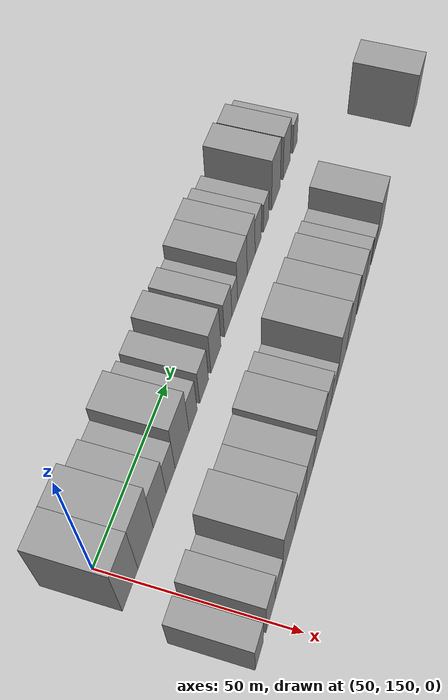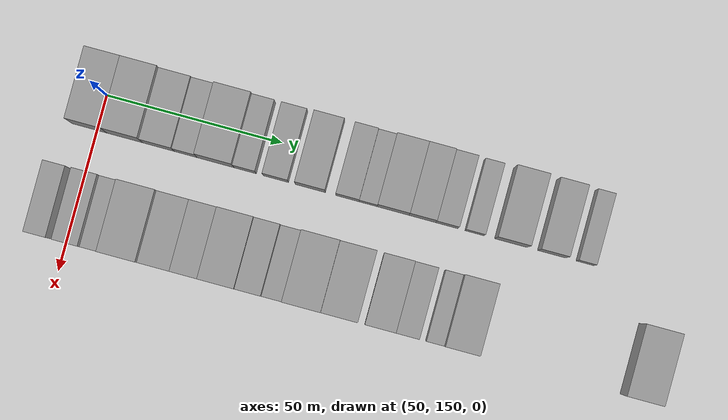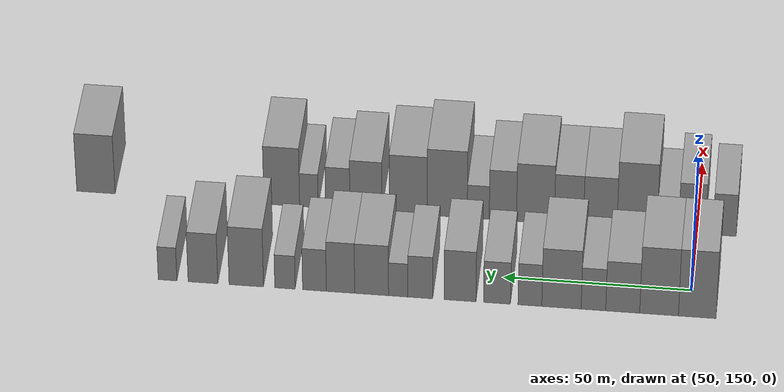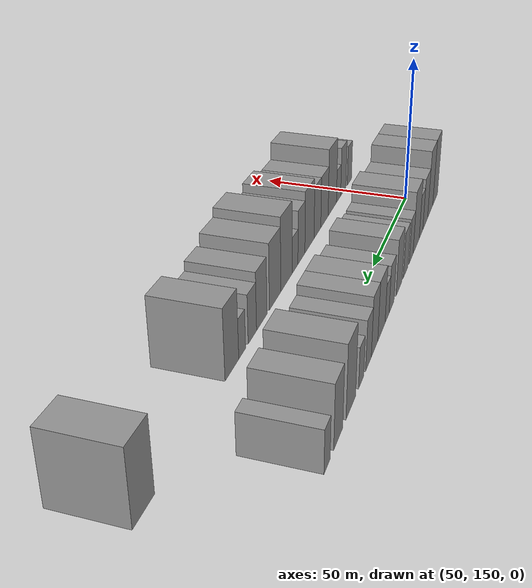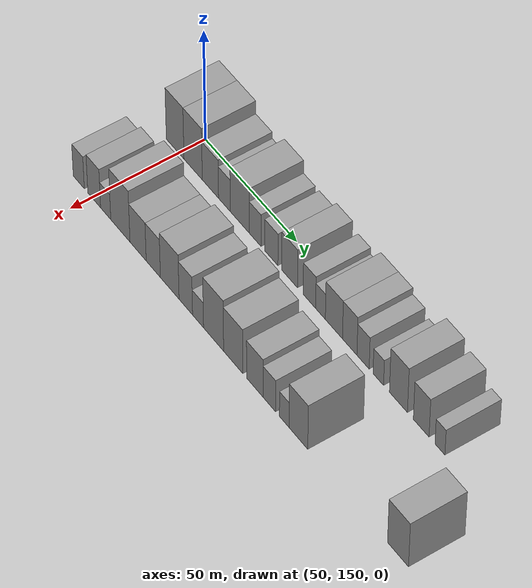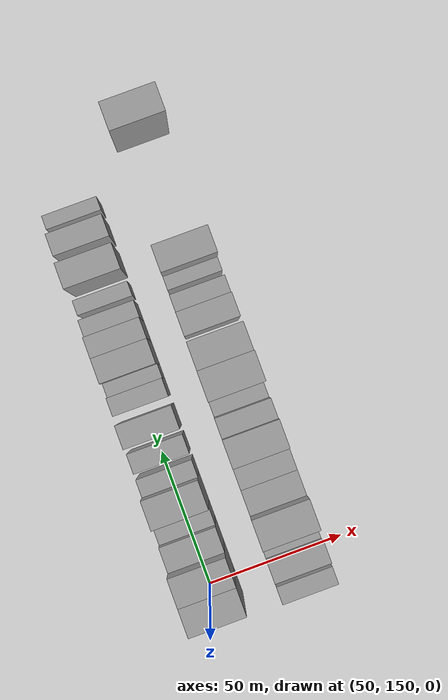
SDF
<sdf version="1.6">
 <world name="default">
  <model name="building_50">
   <static>1</static>
   <pose>50.0000 147.9668 0 0.000000 0.000000 0.000000</pose>
   <link name="link">
    <pose>0 0 12.00 0 0 0</pose>
    <collision name="collision"><geometry><box><size>20.0000 9.9063 24.0000</size></box></geometry></collision>
    <visual name="visual">
     <cast_shadows>0</cast_shadows>
     <geometry><box><size>20.0000 9.9063 24.0000</size></box></geometry>
     <material>
      <script>
       <uri>model://grey_wall/materials/scripts</uri>
       <uri>model://grey_wall/materials/textures</uri>
       <name>vrc/grey_wall</name>
      </script>
     </material>
    </visual>
   </link>
  </model>
  <model name="building_51">
   <static>1</static>
   <pose>50.0000 158.0264 0 0.000000 0.000000 0.000000</pose>
   <link name="link">
    <pose>0 0 12.00 0 0 0</pose>
    <collision name="collision"><geometry><box><size>20.0000 10.2129 24.0000</size></box></geometry></collision>
    <visual name="visual">
     <cast_shadows>0</cast_shadows>
     <geometry><box><size>20.0000 10.2129 24.0000</size></box></geometry>
     <material>
      <script>
       <uri>model://grey_wall/materials/scripts</uri>
       <uri>model://grey_wall/materials/textures</uri>
       <name>vrc/grey_wall</name>
      </script>
     </material>
    </visual>
   </link>
  </model>
  <model name="building_52">
   <static>1</static>
   <pose>50.0000 167.6139 0 0.000000 0.000000 0.000000</pose>
   <link name="link">
    <pose>0 0 9.00 0 0 0</pose>
    <collision name="collision"><geometry><box><size>20.0000 8.9620 18.0000</size></box></geometry></collision>
    <visual name="visual">
     <cast_shadows>0</cast_shadows>
     <geometry><box><size>20.0000 8.9620 18.0000</size></box></geometry>
     <material>
      <script>
       <uri>model://grey_wall/materials/scripts</uri>
       <uri>model://grey_wall/materials/textures</uri>
       <name>vrc/grey_wall</name>
      </script>
     </material>
    </visual>
   </link>
  </model>
  <model name="building_53">
   <static>1</static>
   <pose>50.0000 175.3463 0 0.000000 0.000000 0.000000</pose>
   <link name="link">
    <pose>0 0 7.50 0 0 0</pose>
    <collision name="collision"><geometry><box><size>20.0000 6.5030 15.0000</size></box></geometry></collision>
    <visual name="visual">
     <cast_shadows>0</cast_shadows>
     <geometry><box><size>20.0000 6.5030 15.0000</size></box></geometry>
     <material>
      <script>
       <uri>model://grey_wall/materials/scripts</uri>
       <uri>model://grey_wall/materials/textures</uri>
       <name>vrc/grey_wall</name>
      </script>
     </material>
    </visual>
   </link>
  </model>
  <model name="building_54">
   <static>1</static>
   <pose>50.0000 183.7897 0 0.000000 0.000000 0.000000</pose>
   <link name="link">
    <pose>0 0 10.50 0 0 0</pose>
    <collision name="collision"><geometry><box><size>20.0000 10.3837 21.0000</size></box></geometry></collision>
    <visual name="visual">
     <cast_shadows>0</cast_shadows>
     <geometry><box><size>20.0000 10.3837 21.0000</size></box></geometry>
     <material>
      <script>
       <uri>model://grey_wall/materials/scripts</uri>
       <uri>model://grey_wall/materials/textures</uri>
       <name>vrc/grey_wall</name>
      </script>
     </material>
    </visual>
   </link>
  </model>
  <model name="building_55">
   <static>1</static>
   <pose>50.0000 192.1452 0 0.000000 0.000000 0.000000</pose>
   <link name="link">
    <pose>0 0 7.50 0 0 0</pose>
    <collision name="collision"><geometry><box><size>20.0000 6.3272 15.0000</size></box></geometry></collision>
    <visual name="visual">
     <cast_shadows>0</cast_shadows>
     <geometry><box><size>20.0000 6.3272 15.0000</size></box></geometry>
     <material>
      <script>
       <uri>model://grey_wall/materials/scripts</uri>
       <uri>model://grey_wall/materials/textures</uri>
       <name>vrc/grey_wall</name>
      </script>
     </material>
    </visual>
   </link>
  </model>
  <model name="building_56">
   <static>1</static>
   <pose>50.0000 200.8737 0 0.000000 0.000000 0.000000</pose>
   <link name="link">
    <pose>0 0 7.50 0 0 0</pose>
    <collision name="collision"><geometry><box><size>20.0000 7.1298 15.0000</size></box></geometry></collision>
    <visual name="visual">
     <cast_shadows>0</cast_shadows>
     <geometry><box><size>20.0000 7.1298 15.0000</size></box></geometry>
     <material>
      <script>
       <uri>model://grey_wall/materials/scripts</uri>
       <uri>model://grey_wall/materials/textures</uri>
       <name>vrc/grey_wall</name>
      </script>
     </material>
    </visual>
   </link>
  </model>
  <model name="building_57">
   <static>1</static>
   <pose>50.0000 210.6754 0 0.000000 0.000000 0.000000</pose>
   <link name="link">
    <pose>0 0 9.00 0 0 0</pose>
    <collision name="collision"><geometry><box><size>20.0000 8.4736 18.0000</size></box></geometry></collision>
    <visual name="visual">
     <cast_shadows>0</cast_shadows>
     <geometry><box><size>20.0000 8.4736 18.0000</size></box></geometry>
     <material>
      <script>
       <uri>model://grey_wall/materials/scripts</uri>
       <uri>model://grey_wall/materials/textures</uri>
       <name>vrc/grey_wall</name>
      </script>
     </material>
    </visual>
   </link>
  </model>
  <model name="building_58">
   <static>1</static>
   <pose>50.0000 221.2127 0 0.000000 0.000000 0.000000</pose>
   <link name="link">
    <pose>0 0 7.50 0 0 0</pose>
    <collision name="collision"><geometry><box><size>20.0000 6.6009 15.0000</size></box></geometry></collision>
    <visual name="visual">
     <cast_shadows>0</cast_shadows>
     <geometry><box><size>20.0000 6.6009 15.0000</size></box></geometry>
     <material>
      <script>
       <uri>model://grey_wall/materials/scripts</uri>
       <uri>model://grey_wall/materials/textures</uri>
       <name>vrc/grey_wall</name>
      </script>
     </material>
    </visual>
   </link>
  </model>
  <model name="building_59">
   <static>1</static>
   <pose>50.0000 227.0809 0 0.000000 0.000000 0.000000</pose>
   <link name="link">
    <pose>0 0 6.00 0 0 0</pose>
    <collision name="collision"><geometry><box><size>20.0000 5.1356 12.0000</size></box></geometry></collision>
    <visual name="visual">
     <cast_shadows>0</cast_shadows>
     <geometry><box><size>20.0000 5.1356 12.0000</size></box></geometry>
     <material>
      <script>
       <uri>model://grey_wall/materials/scripts</uri>
       <uri>model://grey_wall/materials/textures</uri>
       <name>vrc/grey_wall</name>
      </script>
     </material>
    </visual>
   </link>
  </model>
  <model name="building_60">
   <static>1</static>
   <pose>50.0000 234.1412 0 0.000000 0.000000 0.000000</pose>
   <link name="link">
    <pose>0 0 9.00 0 0 0</pose>
    <collision name="collision"><geometry><box><size>20.0000 8.9851 18.0000</size></box></geometry></collision>
    <visual name="visual">
     <cast_shadows>0</cast_shadows>
     <geometry><box><size>20.0000 8.9851 18.0000</size></box></geometry>
     <material>
      <script>
       <uri>model://grey_wall/materials/scripts</uri>
       <uri>model://grey_wall/materials/textures</uri>
       <name>vrc/grey_wall</name>
      </script>
     </material>
    </visual>
   </link>
  </model>
  <model name="building_61">
   <static>1</static>
   <pose>50.0000 242.4022 0 0.000000 0.000000 0.000000</pose>
   <link name="link">
    <pose>0 0 9.00 0 0 0</pose>
    <collision name="collision"><geometry><box><size>20.0000 7.5370 18.0000</size></box></geometry></collision>
    <visual name="visual">
     <cast_shadows>0</cast_shadows>
     <geometry><box><size>20.0000 7.5370 18.0000</size></box></geometry>
     <material>
      <script>
       <uri>model://grey_wall/materials/scripts</uri>
       <uri>model://grey_wall/materials/textures</uri>
       <name>vrc/grey_wall</name>
      </script>
     </material>
    </visual>
   </link>
  </model>
  <model name="building_62">
   <static>1</static>
   <pose>50.0000 249.3360 0 0.000000 0.000000 0.000000</pose>
   <link name="link">
    <pose>0 0 7.50 0 0 0</pose>
    <collision name="collision"><geometry><box><size>20.0000 6.3305 15.0000</size></box></geometry></collision>
    <visual name="visual">
     <cast_shadows>0</cast_shadows>
     <geometry><box><size>20.0000 6.3305 15.0000</size></box></geometry>
     <material>
      <script>
       <uri>model://grey_wall/materials/scripts</uri>
       <uri>model://grey_wall/materials/textures</uri>
       <name>vrc/grey_wall</name>
      </script>
     </material>
    </visual>
   </link>
  </model>
  <model name="building_63">
   <static>1</static>
   <pose>50.0000 257.2135 0 0.000000 0.000000 0.000000</pose>
   <link name="link">
    <pose>0 0 6.00 0 0 0</pose>
    <collision name="collision"><geometry><box><size>20.0000 5.4245 12.0000</size></box></geometry></collision>
    <visual name="visual">
     <cast_shadows>0</cast_shadows>
     <geometry><box><size>20.0000 5.4245 12.0000</size></box></geometry>
     <material>
      <script>
       <uri>model://grey_wall/materials/scripts</uri>
       <uri>model://grey_wall/materials/textures</uri>
       <name>vrc/grey_wall</name>
      </script>
     </material>
    </visual>
   </link>
  </model>
  <model name="building_64">
   <static>1</static>
   <pose>50.0000 267.5240 0 0.000000 0.000000 0.000000</pose>
   <link name="link">
    <pose>0 0 10.50 0 0 0</pose>
    <collision name="collision"><geometry><box><size>20.0000 9.1967 21.0000</size></box></geometry></collision>
    <visual name="visual">
     <cast_shadows>0</cast_shadows>
     <geometry><box><size>20.0000 9.1967 21.0000</size></box></geometry>
     <material>
      <script>
       <uri>model://grey_wall/materials/scripts</uri>
       <uri>model://grey_wall/materials/textures</uri>
       <name>vrc/grey_wall</name>
      </script>
     </material>
    </visual>
   </link>
  </model>
  <model name="building_65">
   <static>1</static>
   <pose>50.0000 279.0898 0 0.000000 0.000000 0.000000</pose>
   <link name="link">
    <pose>0 0 9.00 0 0 0</pose>
    <collision name="collision"><geometry><box><size>20.0000 7.9350 18.0000</size></box></geometry></collision>
    <visual name="visual">
     <cast_shadows>0</cast_shadows>
     <geometry><box><size>20.0000 7.9350 18.0000</size></box></geometry>
     <material>
      <script>
       <uri>model://grey_wall/materials/scripts</uri>
       <uri>model://grey_wall/materials/textures</uri>
       <name>vrc/grey_wall</name>
      </script>
     </material>
    </visual>
   </link>
  </model>
  <model name="building_66">
   <static>1</static>
   <pose>50.0000 288.5487 0 0.000000 0.000000 0.000000</pose>
   <link name="link">
    <pose>0 0 6.00 0 0 0</pose>
    <collision name="collision"><geometry><box><size>20.0000 4.9828 12.0000</size></box></geometry></collision>
    <visual name="visual">
     <cast_shadows>0</cast_shadows>
     <geometry><box><size>20.0000 4.9828 12.0000</size></box></geometry>
     <material>
      <script>
       <uri>model://grey_wall/materials/scripts</uri>
       <uri>model://grey_wall/materials/textures</uri>
       <name>vrc/grey_wall</name>
      </script>
     </material>
    </visual>
   </link>
  </model>
  <model name="building_114">
   <static>1</static>
   <pose>82.0000 142.5311 0 0.000000 0.000000 0.000000</pose>
   <link name="link">
    <pose>0 0 7.50 0 0 0</pose>
    <collision name="collision"><geometry><box><size>20.0000 6.2805 15.0000</size></box></geometry></collision>
    <visual name="visual">
     <cast_shadows>0</cast_shadows>
     <geometry><box><size>20.0000 6.2805 15.0000</size></box></geometry>
     <material>
      <script>
       <uri>model://grey_wall/materials/scripts</uri>
       <uri>model://grey_wall/materials/textures</uri>
       <name>vrc/grey_wall</name>
      </script>
     </material>
    </visual>
   </link>
  </model>
  <model name="building_115">
   <static>1</static>
   <pose>82.0000 151.2828 0 0.000000 0.000000 0.000000</pose>
   <link name="link">
    <pose>0 0 9.00 0 0 0</pose>
    <collision name="collision"><geometry><box><size>20.0000 7.2230 18.0000</size></box></geometry></collision>
    <visual name="visual">
     <cast_shadows>0</cast_shadows>
     <geometry><box><size>20.0000 7.2230 18.0000</size></box></geometry>
     <material>
      <script>
       <uri>model://grey_wall/materials/scripts</uri>
       <uri>model://grey_wall/materials/textures</uri>
       <name>vrc/grey_wall</name>
      </script>
     </material>
    </visual>
   </link>
  </model>
  <model name="building_116">
   <static>1</static>
   <pose>82.0000 157.7599 0 0.000000 0.000000 0.000000</pose>
   <link name="link">
    <pose>0 0 6.00 0 0 0</pose>
    <collision name="collision"><geometry><box><size>20.0000 5.7311 12.0000</size></box></geometry></collision>
    <visual name="visual">
     <cast_shadows>0</cast_shadows>
     <geometry><box><size>20.0000 5.7311 12.0000</size></box></geometry>
     <material>
      <script>
       <uri>model://grey_wall/materials/scripts</uri>
       <uri>model://grey_wall/materials/textures</uri>
       <name>vrc/grey_wall</name>
      </script>
     </material>
    </visual>
   </link>
  </model>
  <model name="building_117">
   <static>1</static>
   <pose>82.0000 166.0019 0 0.000000 0.000000 0.000000</pose>
   <link name="link">
    <pose>0 0 12.00 0 0 0</pose>
    <collision name="collision"><geometry><box><size>20.0000 10.7529 24.0000</size></box></geometry></collision>
    <visual name="visual">
     <cast_shadows>0</cast_shadows>
     <geometry><box><size>20.0000 10.7529 24.0000</size></box></geometry>
     <material>
      <script>
       <uri>model://grey_wall/materials/scripts</uri>
       <uri>model://grey_wall/materials/textures</uri>
       <name>vrc/grey_wall</name>
      </script>
     </material>
    </visual>
   </link>
  </model>
  <model name="building_118">
   <static>1</static>
   <pose>82.0000 175.8782 0 0.000000 0.000000 0.000000</pose>
   <link name="link">
    <pose>0 0 9.00 0 0 0</pose>
    <collision name="collision"><geometry><box><size>20.0000 8.9998 18.0000</size></box></geometry></collision>
    <visual name="visual">
     <cast_shadows>0</cast_shadows>
     <geometry><box><size>20.0000 8.9998 18.0000</size></box></geometry>
     <material>
      <script>
       <uri>model://grey_wall/materials/scripts</uri>
       <uri>model://grey_wall/materials/textures</uri>
       <name>vrc/grey_wall</name>
      </script>
     </material>
    </visual>
   </link>
  </model>
  <model name="building_119">
   <static>1</static>
   <pose>82.0000 184.3049 0 0.000000 0.000000 0.000000</pose>
   <link name="link">
    <pose>0 0 9.00 0 0 0</pose>
    <collision name="collision"><geometry><box><size>20.0000 7.8536 18.0000</size></box></geometry></collision>
    <visual name="visual">
     <cast_shadows>0</cast_shadows>
     <geometry><box><size>20.0000 7.8536 18.0000</size></box></geometry>
     <material>
      <script>
       <uri>model://grey_wall/materials/scripts</uri>
       <uri>model://grey_wall/materials/textures</uri>
       <name>vrc/grey_wall</name>
      </script>
     </material>
    </visual>
   </link>
  </model>
  <model name="building_120">
   <static>1</static>
   <pose>82.0000 193.3335 0 0.000000 0.000000 0.000000</pose>
   <link name="link">
    <pose>0 0 10.50 0 0 0</pose>
    <collision name="collision"><geometry><box><size>20.0000 10.2036 21.0000</size></box></geometry></collision>
    <visual name="visual">
     <cast_shadows>0</cast_shadows>
     <geometry><box><size>20.0000 10.2036 21.0000</size></box></geometry>
     <material>
      <script>
       <uri>model://grey_wall/materials/scripts</uri>
       <uri>model://grey_wall/materials/textures</uri>
       <name>vrc/grey_wall</name>
      </script>
     </material>
    </visual>
   </link>
  </model>
  <model name="building_121">
   <static>1</static>
   <pose>82.0000 202.1005 0 0.000000 0.000000 0.000000</pose>
   <link name="link">
    <pose>0 0 9.00 0 0 0</pose>
    <collision name="collision"><geometry><box><size>20.0000 7.3303 18.0000</size></box></geometry></collision>
    <visual name="visual">
     <cast_shadows>0</cast_shadows>
     <geometry><box><size>20.0000 7.3303 18.0000</size></box></geometry>
     <material>
      <script>
       <uri>model://grey_wall/materials/scripts</uri>
       <uri>model://grey_wall/materials/textures</uri>
       <name>vrc/grey_wall</name>
      </script>
     </material>
    </visual>
   </link>
  </model>
  <model name="building_122">
   <static>1</static>
   <pose>82.0000 208.7327 0 0.000000 0.000000 0.000000</pose>
   <link name="link">
    <pose>0 0 6.00 0 0 0</pose>
    <collision name="collision"><geometry><box><size>20.0000 5.9341 12.0000</size></box></geometry></collision>
    <visual name="visual">
     <cast_shadows>0</cast_shadows>
     <geometry><box><size>20.0000 5.9341 12.0000</size></box></geometry>
     <material>
      <script>
       <uri>model://grey_wall/materials/scripts</uri>
       <uri>model://grey_wall/materials/textures</uri>
       <name>vrc/grey_wall</name>
      </script>
     </material>
    </visual>
   </link>
  </model>
  <model name="building_123">
   <static>1</static>
   <pose>82.0000 217.0974 0 0.000000 0.000000 0.000000</pose>
   <link name="link">
    <pose>0 0 12.00 0 0 0</pose>
    <collision name="collision"><geometry><box><size>20.0000 10.7953 24.0000</size></box></geometry></collision>
    <visual name="visual">
     <cast_shadows>0</cast_shadows>
     <geometry><box><size>20.0000 10.7953 24.0000</size></box></geometry>
     <material>
      <script>
       <uri>model://grey_wall/materials/scripts</uri>
       <uri>model://grey_wall/materials/textures</uri>
       <name>vrc/grey_wall</name>
      </script>
     </material>
    </visual>
   </link>
  </model>
  <model name="building_124">
   <static>1</static>
   <pose>82.0000 227.6253 0 0.000000 0.000000 0.000000</pose>
   <link name="link">
    <pose>0 0 10.50 0 0 0</pose>
    <collision name="collision"><geometry><box><size>20.0000 10.2604 21.0000</size></box></geometry></collision>
    <visual name="visual">
     <cast_shadows>0</cast_shadows>
     <geometry><box><size>20.0000 10.2604 21.0000</size></box></geometry>
     <material>
      <script>
       <uri>model://grey_wall/materials/scripts</uri>
       <uri>model://grey_wall/materials/textures</uri>
       <name>vrc/grey_wall</name>
      </script>
     </material>
    </visual>
   </link>
  </model>
  <model name="building_125">
   <static>1</static>
   <pose>82.0000 239.0850 0 0.000000 0.000000 0.000000</pose>
   <link name="link">
    <pose>0 0 9.00 0 0 0</pose>
    <collision name="collision"><geometry><box><size>20.0000 8.6589 18.0000</size></box></geometry></collision>
    <visual name="visual">
     <cast_shadows>0</cast_shadows>
     <geometry><box><size>20.0000 8.6589 18.0000</size></box></geometry>
     <material>
      <script>
       <uri>model://grey_wall/materials/scripts</uri>
       <uri>model://grey_wall/materials/textures</uri>
       <name>vrc/grey_wall</name>
      </script>
     </material>
    </visual>
   </link>
  </model>
  <model name="building_126">
   <static>1</static>
   <pose>82.0000 246.7054 0 0.000000 0.000000 0.000000</pose>
   <link name="link">
    <pose>0 0 7.50 0 0 0</pose>
    <collision name="collision"><geometry><box><size>20.0000 6.5820 15.0000</size></box></geometry></collision>
    <visual name="visual">
     <cast_shadows>0</cast_shadows>
     <geometry><box><size>20.0000 6.5820 15.0000</size></box></geometry>
     <material>
      <script>
       <uri>model://grey_wall/materials/scripts</uri>
       <uri>model://grey_wall/materials/textures</uri>
       <name>vrc/grey_wall</name>
      </script>
     </material>
    </visual>
   </link>
  </model>
  <model name="building_127">
   <static>1</static>
   <pose>82.0000 254.5157 0 0.000000 0.000000 0.000000</pose>
   <link name="link">
    <pose>0 0 6.00 0 0 0</pose>
    <collision name="collision"><geometry><box><size>20.0000 5.0386 12.0000</size></box></geometry></collision>
    <visual name="visual">
     <cast_shadows>0</cast_shadows>
     <geometry><box><size>20.0000 5.0386 12.0000</size></box></geometry>
     <material>
      <script>
       <uri>model://grey_wall/materials/scripts</uri>
       <uri>model://grey_wall/materials/textures</uri>
       <name>vrc/grey_wall</name>
      </script>
     </material>
    </visual>
   </link>
  </model>
  <model name="building_128">
   <static>1</static>
   <pose>82.0000 261.8742 0 0.000000 0.000000 0.000000</pose>
   <link name="link">
    <pose>0 0 10.50 0 0 0</pose>
    <collision name="collision"><geometry><box><size>20.0000 9.6783 21.0000</size></box></geometry></collision>
    <visual name="visual">
     <cast_shadows>0</cast_shadows>
     <geometry><box><size>20.0000 9.6783 21.0000</size></box></geometry>
     <material>
      <script>
       <uri>model://grey_wall/materials/scripts</uri>
       <uri>model://grey_wall/materials/textures</uri>
       <name>vrc/grey_wall</name>
      </script>
     </material>
    </visual>
   </link>
  </model>
  <model name="building_129">
   <static>1</static>
   <pose>82.0000 312.3830 0 0.000000 0.000000 0.000000</pose>
   <link name="link">
    <pose>0 0 10.50 0 0 0</pose>
    <collision name="collision"><geometry><box><size>20.0000 10.4465 21.0000</size></box></geometry></collision>
    <visual name="visual">
     <cast_shadows>0</cast_shadows>
     <geometry><box><size>20.0000 10.4465 21.0000</size></box></geometry>
     <material>
      <script>
       <uri>model://grey_wall/materials/scripts</uri>
       <uri>model://grey_wall/materials/textures</uri>
       <name>vrc/grey_wall</name>
      </script>
     </material>
    </visual>
   </link>
  </model>
 </world>
</sdf>
